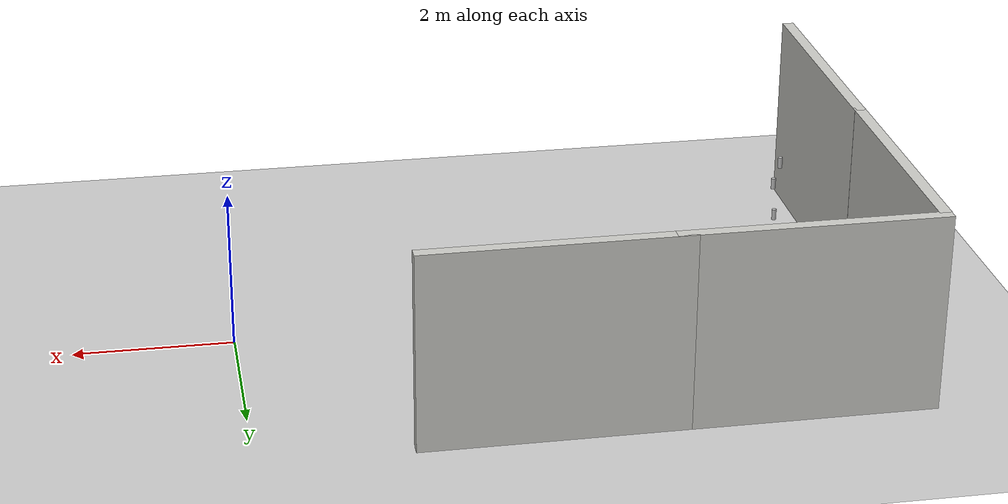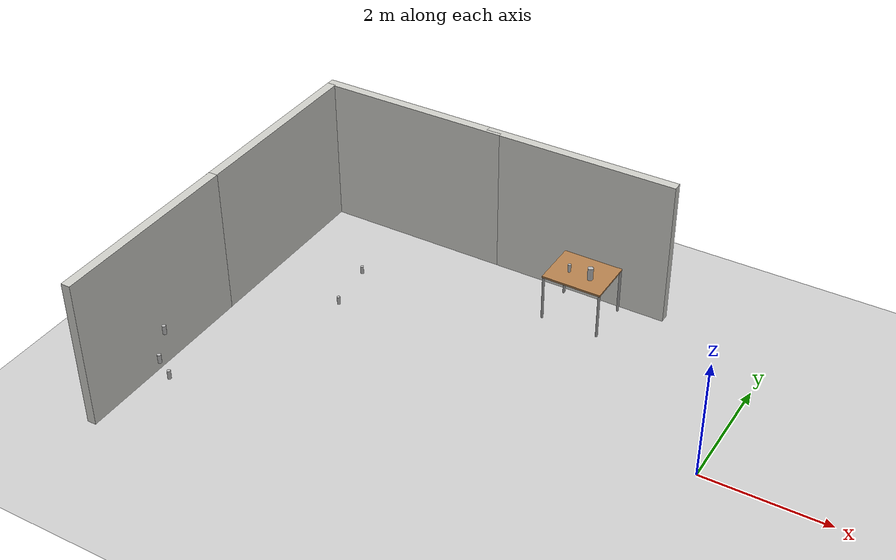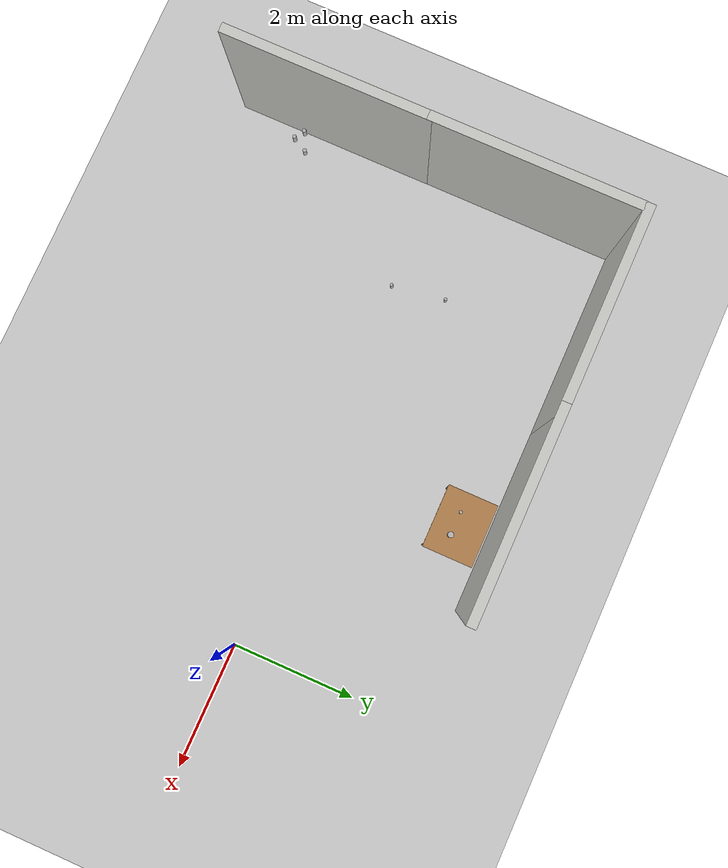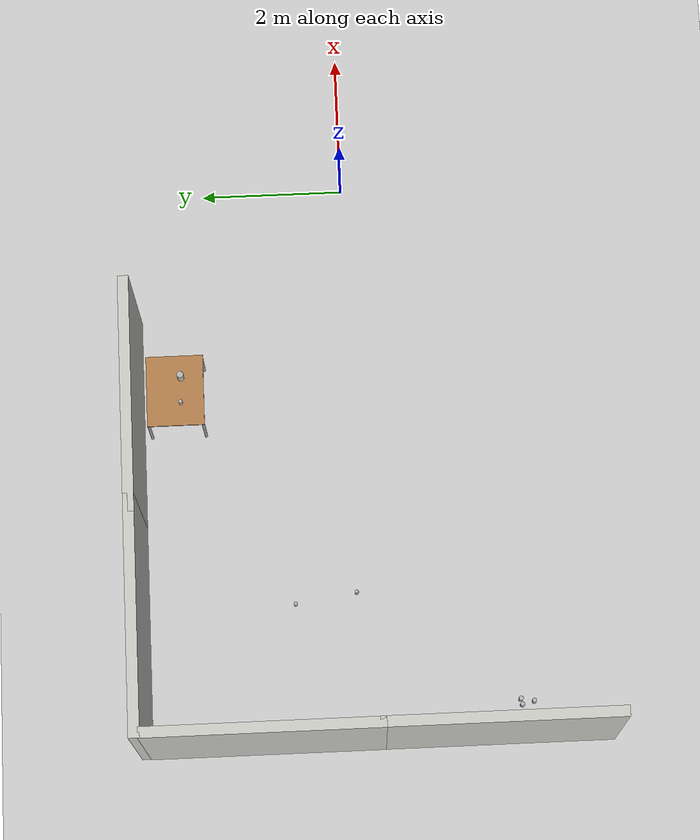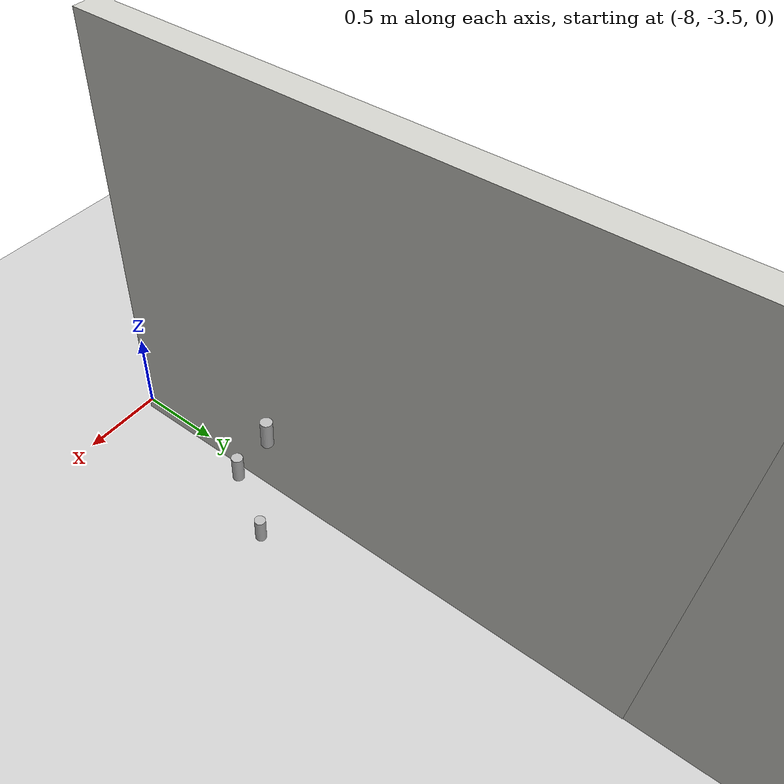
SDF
<sdf version="1.6">
 <world name="default">
  <light name="sun" type="directional">
   <pose>0 0 10 0 -0 0</pose>
   <diffuse>0.8 0.8 0.8 1</diffuse>
   <specular>0.1 0.1 0.1 1</specular>
   <attenuation>
    <range>1000</range>
    <constant>0.9</constant>
    <linear>0.01</linear>
    <quadratic>0.001</quadratic>
   </attenuation>
   <direction>-0.5 0.5 -1</direction>
  </light>
  <model name="ground_plane">
   <static>1</static>
   <link name="link">
    <collision name="collision">
     <geometry><plane><normal>0 0 1</normal><size>100 100</size></plane></geometry>
     <surface><friction><ode><mu>100</mu><mu2>50</mu2></ode></friction></surface>
    </collision>
    <visual name="visual">
     <cast_shadows>0</cast_shadows>
     <geometry><plane><normal>0 0 1</normal><size>100 100</size></plane></geometry>
     <material>
      <script><uri>file://media/materials/scripts/gazebo.material</uri><name>Gazebo/Grey</name></script>
     </material>
    </visual>
   </link>
  </model>
  <gravity>0 0 -9.8</gravity>
  <magnetic_field>6e-06 2.3e-05 -4.2e-05</magnetic_field>
  <atmosphere type="adiabatic"/>
  <physics name="default_physics" default="0" type="ode">
   <max_step_size>0.001</max_step_size>
   <real_time_factor>1</real_time_factor>
   <real_time_update_rate>1000</real_time_update_rate>
  </physics>
  <scene><ambient>0.4 0.4 0.4 1</ambient><background>0.7 0.7 0.7 1</background><shadows>1</shadows></scene>
  <spherical_coordinates>
   <surface_model>EARTH_WGS84</surface_model>
   <latitude_deg>0</latitude_deg>
   <longitude_deg>0</longitude_deg>
   <elevation>0</elevation>
   <heading_deg>0</heading_deg>
  </spherical_coordinates>
  <model name="White_tiles_wall">
   <pose>-8.02872 -1.83994 0 0 -0 0</pose>
   <link name="Wall_1">
    <collision name="Wall_1_Collision">
     <geometry><box><size>3.25 0.15 2.5</size></box></geometry>
     <pose>0 0 1.25 0 -0 0</pose>
    </collision>
    <visual name="Wall_1_Visual">
     <pose>0 0 1.25 0 -0 0</pose>
     <geometry><box><size>3.25 0.15 2.5</size></box></geometry>
     <material>
      <script><uri>file://media/materials/scripts/gazebo.material</uri><name>Gazebo/CeilingTiled</name></script>
      <ambient>1 1 1 1</ambient>
     </material>
    </visual>
    <pose>0 0 0 0 0 -1.5708</pose>
   </link>
   <static>1</static>
  </model>
  <model name="White_tiles_wall_clone">
   <pose>-8.03084 1.32682 0 0 -0 0</pose>
   <link name="Wall_1">
    <collision name="Wall_1_Collision">
     <geometry><box><size>3.25 0.15 2.5</size></box></geometry>
     <pose>0 0 1.25 0 -0 0</pose>
    </collision>
    <visual name="Wall_1_Visual">
     <pose>0 0 1.25 0 -0 0</pose>
     <geometry><box><size>3.25 0.15 2.5</size></box></geometry>
     <material>
      <script><uri>file://media/materials/scripts/gazebo.material</uri><name>Gazebo/CeilingTiled</name></script>
      <ambient>1 1 1 1</ambient>
     </material>
    </visual>
    <pose>0 0 0 0 0 -1.5708</pose>
   </link>
   <static>1</static>
  </model>
  <model name="White_tiles_wall_clone_0_clone">
   <pose>-6.47677 3 0 0 0 -1.5708</pose>
   <link name="Wall_1">
    <collision name="Wall_1_Collision">
     <geometry><box><size>3.25 0.15 2.5</size></box></geometry>
     <pose>0 0 1.25 0 -0 0</pose>
    </collision>
    <visual name="Wall_1_Visual">
     <pose>0 0 1.25 0 -0 0</pose>
     <geometry><box><size>3.25 0.15 2.5</size></box></geometry>
     <material>
      <script><uri>file://media/materials/scripts/gazebo.material</uri><name>Gazebo/CeilingTiled</name></script>
      <ambient>1 1 1 1</ambient>
     </material>
    </visual>
    <pose>0 0 0 0 0 -1.5708</pose>
   </link>
   <static>1</static>
  </model>
  <model name="White_tiles_wall_clone_0_clone_1">
   <pose>-3.47572 3 0 0 0 -1.5708</pose>
   <link name="Wall_1">
    <collision name="Wall_1_Collision">
     <geometry><box><size>3.25 0.15 2.5</size></box></geometry>
     <pose>0 0 1.25 0 -0 0</pose>
    </collision>
    <visual name="Wall_1_Visual">
     <pose>0 0 1.25 0 -0 0</pose>
     <geometry><box><size>3.25 0.15 2.5</size></box></geometry>
     <material>
      <script><uri>file://media/materials/scripts/gazebo.material</uri><name>Gazebo/CeilingTiled</name></script>
      <ambient>1 1 1 1</ambient>
     </material>
    </visual>
    <pose>0 0 0 0 0 -1.5708</pose>
   </link>
   <static>1</static>
  </model>
  <model name="bifrutas_tropical_can">
   <static>0</static>
   <link name="link">
    <inertial>
     <mass>0.25</mass>
     <inertia><ixx>0</ixx><ixy>0</ixy><ixz>0</ixz><iyy>0</iyy><iyz>0</iyz><izz>0</izz></inertia>
    </inertial>
    <collision name="collision">
     <geometry><cylinder><radius>0.025</radius><length>0.132</length></cylinder></geometry>
    </collision>
    <visual name="visual">
     <geometry><cylinder><radius>0.025</radius><length>0.132</length></cylinder></geometry>
     <material>
      <script>
       <uri>model://bifrutas_tropical_can/material/scripts</uri>
       <uri>model://bifrutas_tropical_can/material/textures</uri>
       <name>Custom/bifrutas_tropical_can</name>
      </script>
     </material>
    </visual>
    <velocity_decay><linear>0</linear><angular>0</angular></velocity_decay>
   </link>
   <pose>-6.01134 0.019298 0.728248 0 -0 1.96342</pose>
  </model>
  <model name="bifrutas_tropical_can_0">
   <static>0</static>
   <link name="link">
    <inertial>
     <mass>0.25</mass>
     <inertia><ixx>0</ixx><ixy>0</ixy><ixz>0</ixz><iyy>0</iyy><iyz>0</iyz><izz>0</izz></inertia>
    </inertial>
    <collision name="collision">
     <geometry><cylinder><radius>0.025</radius><length>0.132</length></cylinder></geometry>
    </collision>
    <visual name="visual">
     <geometry><cylinder><radius>0.025</radius><length>0.132</length></cylinder></geometry>
     <material>
      <script>
       <uri>model://bifrutas_tropical_can/material/scripts</uri>
       <uri>model://bifrutas_tropical_can/material/textures</uri>
       <name>Custom/bifrutas_tropical_can</name>
      </script>
     </material>
    </visual>
    <velocity_decay><linear>0</linear><angular>0</angular></velocity_decay>
   </link>
   <pose>-6.1387 0.864421 0.725281 0 0 -2.94009</pose>
  </model>
  <model name="table">
   <static>1</static>
   <link name="link">
    <collision name="surface">
     <pose>0 0 0.8 0 -0 0</pose>
     <geometry><box><size>1 0.8 0.03</size></box></geometry>
    </collision>
    <visual name="visual1">
     <pose>0 0 0.8 0 -0 0</pose>
     <geometry><box><size>1 0.8 0.03</size></box></geometry>
     <material>
      <script><uri>file://media/materials/scripts/gazebo.material</uri><name>Gazebo/Wood</name></script>
     </material>
    </visual>
    <collision name="front_left_leg">
     <pose>0.48 0.38 0.4 0 -0 0</pose>
     <geometry><cylinder><radius>0.02</radius><length>0.8</length></cylinder></geometry>
    </collision>
    <visual name="front_left_leg">
     <pose>0.48 0.38 0.4 0 -0 0</pose>
     <geometry><cylinder><radius>0.02</radius><length>0.8</length></cylinder></geometry>
     <material>
      <script><uri>file://media/materials/scripts/gazebo.material</uri><name>Gazebo/Grey</name></script>
     </material>
    </visual>
    <collision name="front_right_leg">
     <pose>0.48 -0.38 0.4 0 -0 0</pose>
     <geometry><cylinder><radius>0.02</radius><length>0.8</length></cylinder></geometry>
    </collision>
    <visual name="front_right_leg">
     <pose>0.48 -0.38 0.4 0 -0 0</pose>
     <geometry><cylinder><radius>0.02</radius><length>0.8</length></cylinder></geometry>
     <material>
      <script><uri>file://media/materials/scripts/gazebo.material</uri><name>Gazebo/Grey</name></script>
     </material>
    </visual>
    <collision name="back_right_leg">
     <pose>-0.48 -0.38 0.4 0 -0 0</pose>
     <geometry><cylinder><radius>0.02</radius><length>0.8</length></cylinder></geometry>
    </collision>
    <visual name="back_right_leg">
     <pose>-0.48 -0.38 0.4 0 -0 0</pose>
     <geometry><cylinder><radius>0.02</radius><length>0.8</length></cylinder></geometry>
     <material>
      <script><uri>file://media/materials/scripts/gazebo.material</uri><name>Gazebo/Grey</name></script>
     </material>
    </visual>
    <collision name="back_left_leg">
     <pose>-0.48 0.38 0.4 0 -0 0</pose>
     <geometry><cylinder><radius>0.02</radius><length>0.8</length></cylinder></geometry>
    </collision>
    <visual name="back_left_leg">
     <pose>-0.48 0.38 0.4 0 -0 0</pose>
     <geometry><cylinder><radius>0.02</radius><length>0.8</length></cylinder></geometry>
     <material>
      <script><uri>file://media/materials/scripts/gazebo.material</uri><name>Gazebo/Grey</name></script>
     </material>
    </visual>
    <velocity_decay><linear>0</linear><angular>0</angular></velocity_decay>
   </link>
   <pose>-3.06375 2.43694 0 0 -0 0</pose>
  </model>
  <model name="bifrutas_tropical_can_1">
   <static>0</static>
   <link name="link">
    <inertial>
     <mass>0.25</mass>
     <inertia><ixx>0</ixx><ixy>0</ixy><ixz>0</ixz><iyy>0</iyy><iyz>0</iyz><izz>0</izz></inertia>
    </inertial>
    <collision name="collision">
     <geometry><cylinder><radius>0.0456027</radius><length>0.291698</length></cylinder></geometry>
    </collision>
    <visual name="visual">
     <geometry><cylinder><radius>0.0456027</radius><length>0.291698</length></cylinder></geometry>
     <material>
      <script>
       <uri>model://bifrutas_tropical_can/material/scripts</uri>
       <uri>model://bifrutas_tropical_can/material/textures</uri>
       <name>Custom/bifrutas_tropical_can</name>
      </script>
     </material>
    </visual>
    <velocity_decay><linear>0</linear><angular>0</angular></velocity_decay>
   </link>
   <pose>-2.88505 2.34985 0.879965 0 0 -0.029294</pose>
  </model>
  <light name="user_spot_light_0" type="spot">
   <pose>-2.76803 -2.68624 1 0 -0 0</pose>
   <diffuse>0.5 0.5 0.5 1</diffuse>
   <specular>0.1 0.1 0.1 1</specular>
   <direction>0 0 -1</direction>
   <attenuation>
    <range>20</range>
    <constant>0.5</constant>
    <linear>0.01</linear>
    <quadratic>0.001</quadratic>
   </attenuation>
   <cast_shadows>0</cast_shadows>
   <spot><inner_angle>0.6</inner_angle><outer_angle>1</outer_angle><falloff>1</falloff></spot>
  </light>
  <model name="bifrutas_tropical_can_2">
   <static>0</static>
   <link name="link">
    <inertial>
     <mass>0.25</mass>
     <inertia><ixx>0</ixx><ixy>0</ixy><ixz>0</ixz><iyy>0</iyy><iyz>0</iyz><izz>0</izz></inertia>
    </inertial>
    <collision name="collision">
     <geometry><cylinder><radius>0.025</radius><length>0.132</length></cylinder></geometry>
    </collision>
    <visual name="visual">
     <geometry><cylinder><radius>0.025</radius><length>0.132</length></cylinder></geometry>
     <material>
      <script>
       <uri>model://bifrutas_tropical_can/material/scripts</uri>
       <uri>model://bifrutas_tropical_can/material/textures</uri>
       <name>Custom/bifrutas_tropical_can</name>
      </script>
     </material>
    </visual>
    <velocity_decay><linear>0</linear><angular>0</angular></velocity_decay>
   </link>
   <pose>-3.2507 2.35755 0.885162 0 -0 0</pose>
  </model>
  <model name="bifrutas_tropical_can_3">
   <static>0</static>
   <link name="link">
    <inertial>
     <mass>0.25</mass>
     <inertia><ixx>0</ixx><ixy>0</ixy><ixz>0</ixz><iyy>0</iyy><iyz>0</iyz><izz>0</izz></inertia>
    </inertial>
    <collision name="collision">
     <geometry><cylinder><radius>0.0306845</radius><length>0.150432</length></cylinder></geometry>
    </collision>
    <visual name="visual">
     <geometry><cylinder><radius>0.0306845</radius><length>0.150432</length></cylinder></geometry>
     <material>
      <script>
       <uri>model://bifrutas_tropical_can/material/scripts</uri>
       <uri>model://bifrutas_tropical_can/material/textures</uri>
       <name>Custom/bifrutas_tropical_can</name>
      </script>
     </material>
    </visual>
    <velocity_decay><linear>0</linear><angular>0</angular></velocity_decay>
   </link>
   <pose>-7.58924 -2.20663 0.191678 0 -0 1.64367</pose>
  </model>
  <model name="bifrutas_tropical_can_3_clone">
   <static>0</static>
   <link name="link">
    <inertial>
     <mass>0.25</mass>
     <inertia><ixx>0</ixx><ixy>0</ixy><ixz>0</ixz><iyy>0</iyy><iyz>0</iyz><izz>0</izz></inertia>
    </inertial>
    <collision name="collision">
     <geometry><cylinder><radius>0.0306846</radius><length>0.150433</length></cylinder></geometry>
    </collision>
    <visual name="visual">
     <geometry><cylinder><radius>0.0306846</radius><length>0.150433</length></cylinder></geometry>
     <material>
      <script>
       <uri>model://bifrutas_tropical_can/material/scripts</uri>
       <uri>model://bifrutas_tropical_can/material/textures</uri>
       <name>Custom/bifrutas_tropical_can</name>
      </script>
     </material>
    </visual>
    <velocity_decay><linear>0</linear><angular>0</angular></velocity_decay>
   </link>
   <pose>-7.59908 -2.34515 0.594482 0 -0 1.64367</pose>
  </model>
  <model name="bifrutas_tropical_can_3_clone_clone">
   <static>0</static>
   <link name="link">
    <inertial>
     <mass>0.25</mass>
     <inertia><ixx>0</ixx><ixy>0</ixy><ixz>0</ixz><iyy>0</iyy><iyz>0</iyz><izz>0</izz></inertia>
    </inertial>
    <collision name="collision">
     <geometry><cylinder><radius>0.0306846</radius><length>0.150433</length></cylinder></geometry>
    </collision>
    <visual name="visual">
     <geometry><cylinder><radius>0.0306846</radius><length>0.150433</length></cylinder></geometry>
     <material>
      <script>
       <uri>model://bifrutas_tropical_can/material/scripts</uri>
       <uri>model://bifrutas_tropical_can/material/textures</uri>
       <name>Custom/bifrutas_tropical_can</name>
      </script>
     </material>
    </visual>
    <velocity_decay><linear>0</linear><angular>0</angular></velocity_decay>
   </link>
   <pose>-7.61471 -2.14118 0.991956 0 -0 1.64367</pose>
  </model>
 </world>
</sdf>
